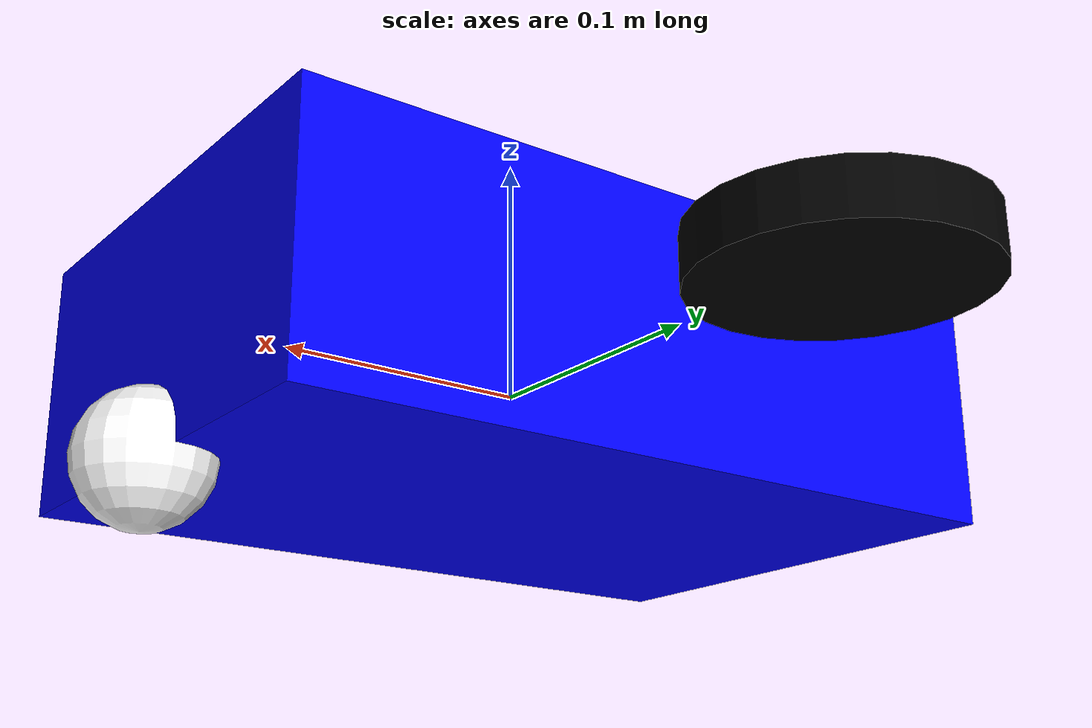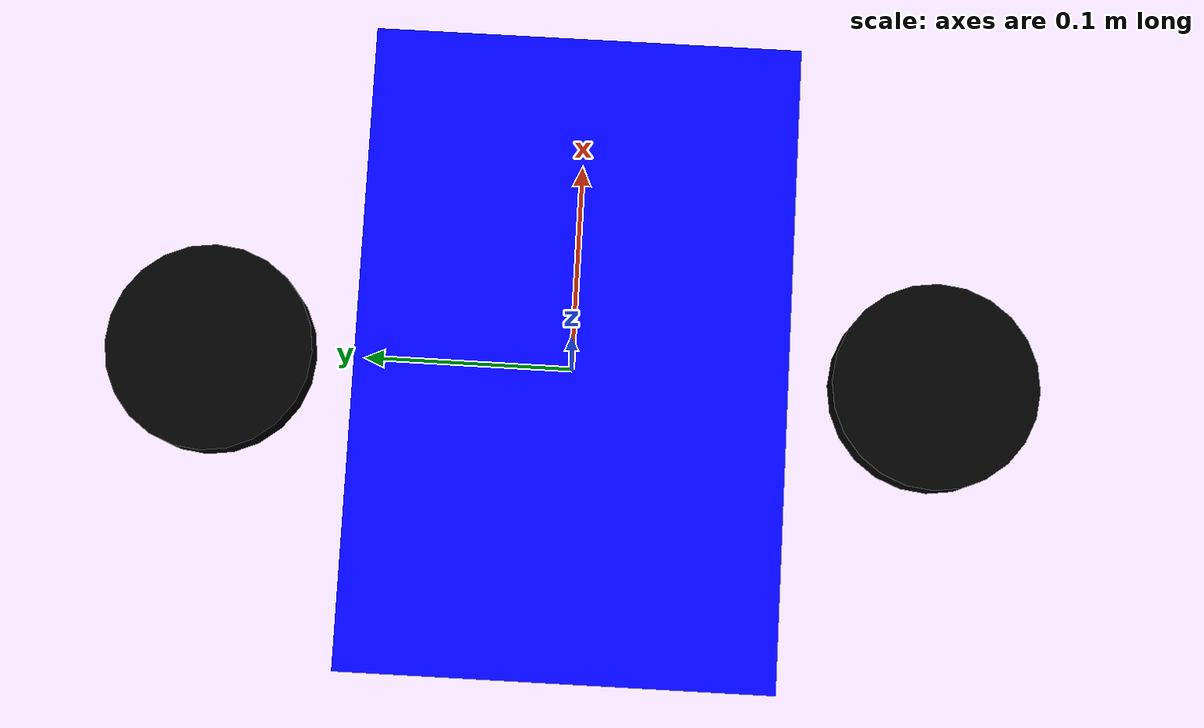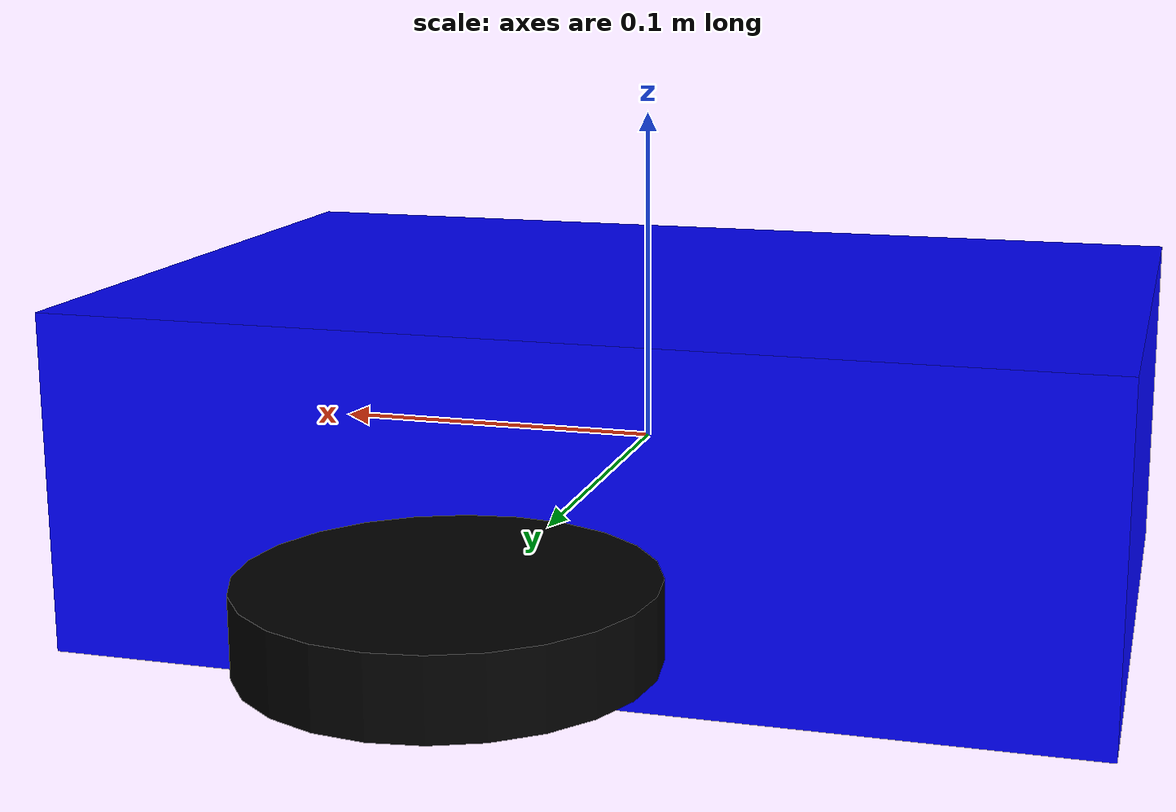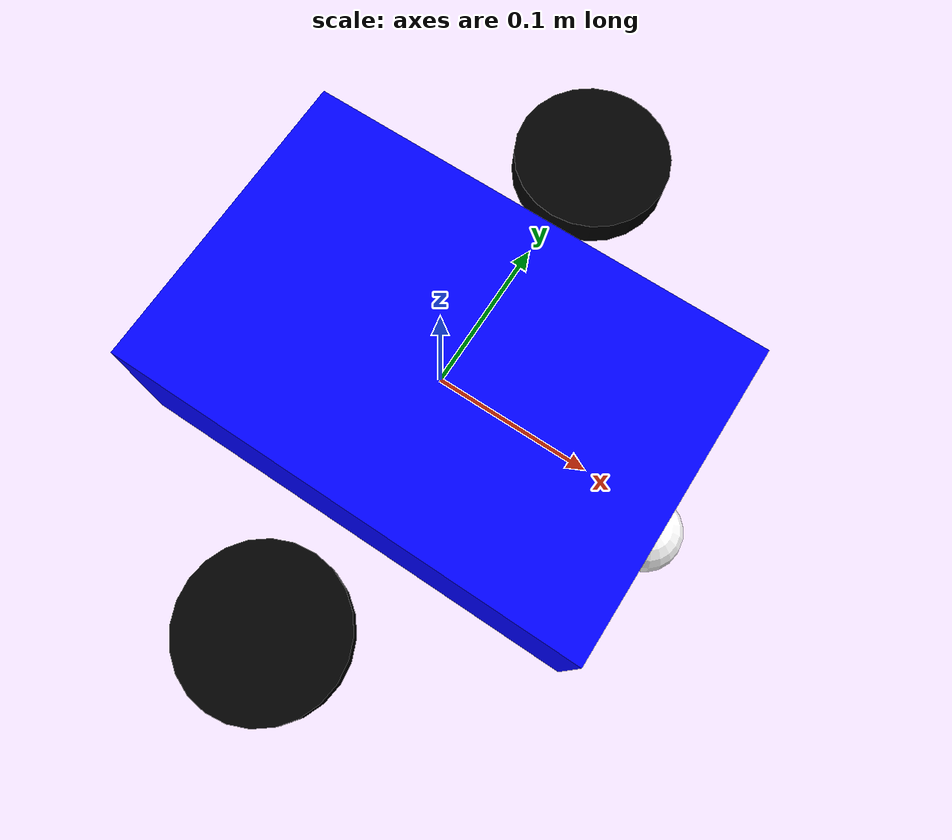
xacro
<?xml version="1.0"?>
<robot xmlns:xacro="http://www.ros.org/wiki/xacro" name="my_bot">
    <xacro:include filename="inertial_macros.xacro"/>
    <xacro:include filename="gazebo_control.xacro"/>

    <!-- Define materials for the robot -->
    <material name="blue">
        <color rgba="0 0 1 1"/>
    </material>
    <material name="black">
        <color rgba="0 0 0 1"/>
    </material>
    <material name="white">
        <color rgba="1 1 1 1"/>
    </material>

    <!-- ros2_control -->
    <ros2_control name="GazeboSimSystem" type="system">
        <hardware>
            <plugin>gz_ros2_control/GazeboSimSystem</plugin>
        </hardware>
        <joint name="left_wheel_joint">
            <command_interface name="velocity">
                <param name="min">-10</param>
                <param name="max">10</param>
            </command_interface>
            <state_interface name="velocity"/>
            <state_interface name="position"/>
        </joint>
        <joint name="right_wheel_joint">
            <command_interface name="velocity">
                <param name="min">-10</param>
                <param name="max">10</param>
            </command_interface>
            <state_interface name="velocity"/>
            <state_interface name="position"/>
        </joint>
    </ros2_control>

    <!-- Links -->
    <link name="base_link">
        <inertial>
            <origin xyz="0 0 0.05" rpy="0 0 0"/>
            <mass value="1.0"/>
            <inertia ixx="0.008333" ixy="0.0" ixz="0.0"
                     iyy="0.011667" iyz="0.0"
                     izz="0.015833"/>
        </inertial>
        <visual>
            <geometry>
                <box size="0.3 0.2 0.1"/>
            </geometry>
            <material name="blue">
                <color rgba="0 0 1 1"/>
            </material>
        </visual>
        <collision>
            <geometry>
                <box size="0.3 0.2 0.1"/>
            </geometry>
        </collision>
    </link>

    <link name="left_wheel">
        <inertial>
            <origin xyz="0 0 0" rpy="1.5707 0 0"/>
            <mass value="0.1"/>
            <inertia ixx="0.000067083" ixy="0.0" ixz="0.0"
                     iyy="0.000067083" iyz="0.0"
                     izz="0.000125"/>
        </inertial>
        <visual>
            <geometry>
                <cylinder radius="0.05" length="0.02"/>
            </geometry>
            <material name="black">
                <color rgba="0 0 0 1"/>
            </material>
        </visual>
        <collision>
            <geometry>
                <cylinder radius="0.05" length="0.02"/>
            </geometry>
        </collision>
    </link>

    <link name="right_wheel">
        <inertial>
            <origin xyz="0 0 0" rpy="1.5707 0 0"/>
            <mass value="0.1"/>
            <inertia ixx="0.000067083" ixy="0.0" ixz="0.0"
                     iyy="0.000067083" iyz="0.0"
                     izz="0.000125"/>
        </inertial>
        <visual>
            <geometry>
                <cylinder radius="0.05" length="0.02"/>
            </geometry>
            <material name="black">
                <color rgba="0 0 0 1"/>
            </material>
        </visual>
        <collision>
            <geometry>
                <cylinder radius="0.05" length="0.02"/>
            </geometry>
        </collision>
    </link>

    <link name="caster_wheel">
        <inertial>
            <origin xyz="0 0 0" rpy="0 0 0"/>
            <mass value="0.05"/>
            <inertia ixx="0.000003125" ixy="0.0" ixz="0.0"
                     iyy="0.000003125" iyz="0.0"
                     izz="0.000003125"/>
        </inertial>
        <visual>
            <geometry>
                <sphere radius="0.025"/>
            </geometry>
            <material name="white">
                <color rgba="1 1 1 1"/>
            </material>
        </visual>
        <collision>
            <geometry>
                <sphere radius="0.025"/>
            </geometry>
        </collision>
    </link>

    <!-- Joints -->
    <joint name="left_wheel_joint" type="continuous">
        <parent link="base_link"/>
        <child link="left_wheel"/>
        <origin xyz="0 0.175 0" rpy="0 0 0"/>
        <axis xyz="0 1 0"/>
    </joint>

    <joint name="right_wheel_joint" type="continuous">
        <parent link="base_link"/>
        <child link="right_wheel"/>
        <origin xyz="0 -0.175 0" rpy="0 0 0"/>
        <axis xyz="0 1 0"/>
    </joint>

    <joint name="caster_wheel_joint" type="continuous">
        <parent link="base_link"/>
        <child link="caster_wheel"/>
        <origin xyz="0.15 0 -0.05" rpy="0 0 0"/>
        <axis xyz="0 0 1"/>
    </joint>
</robot>
